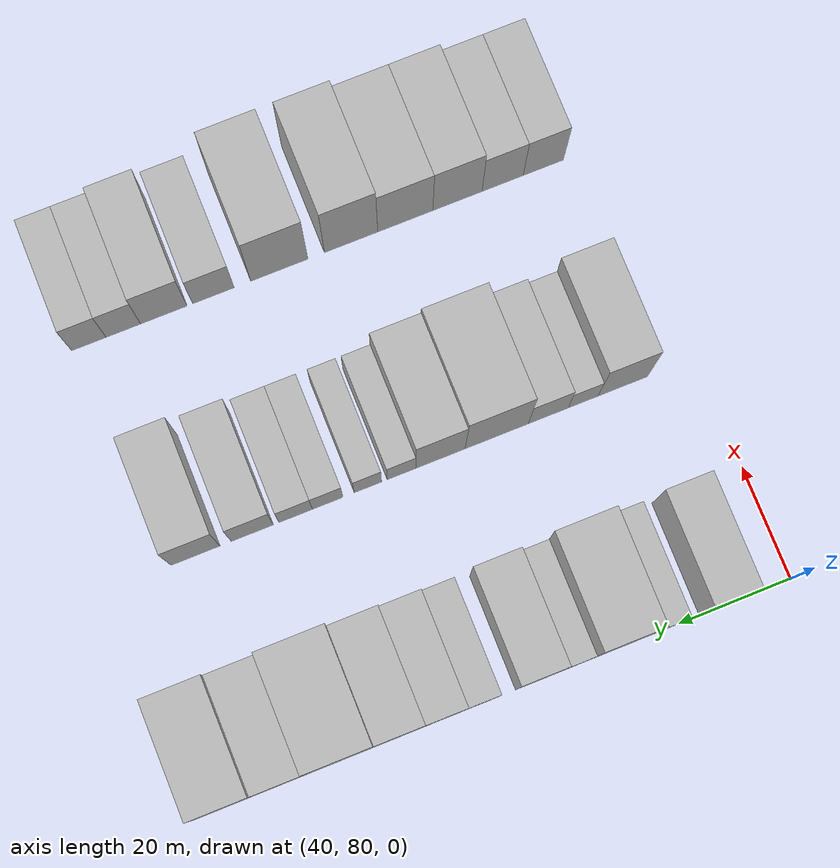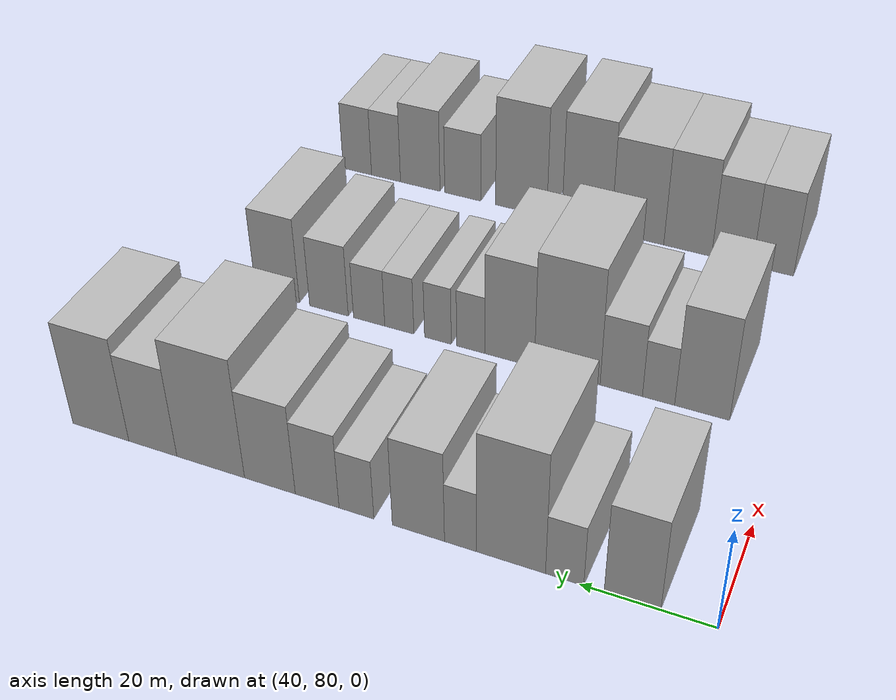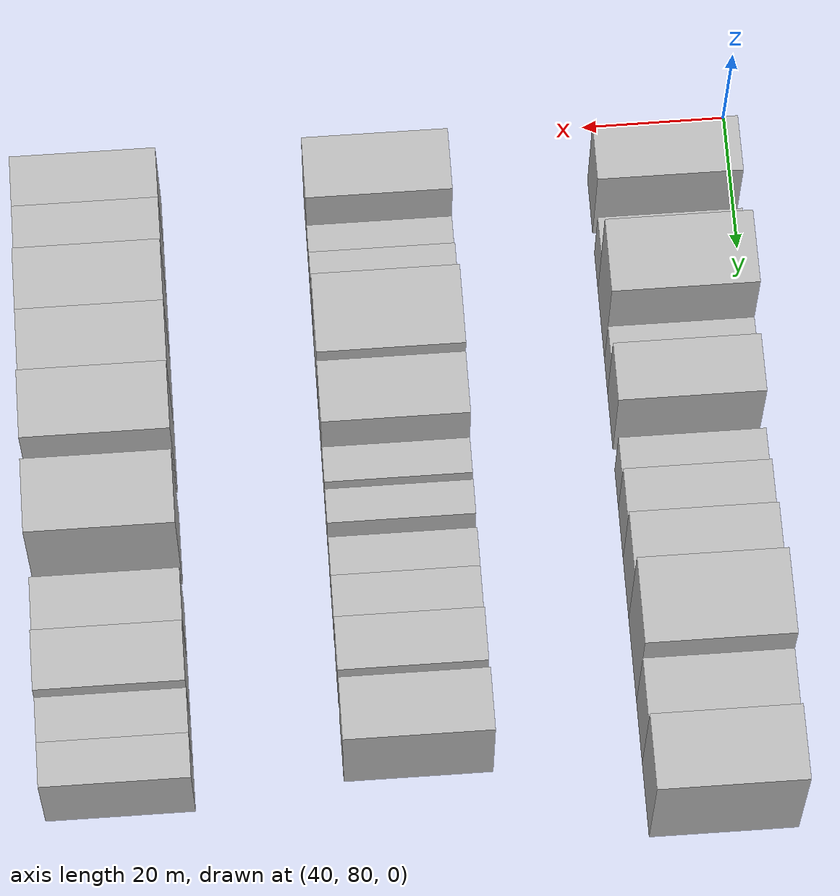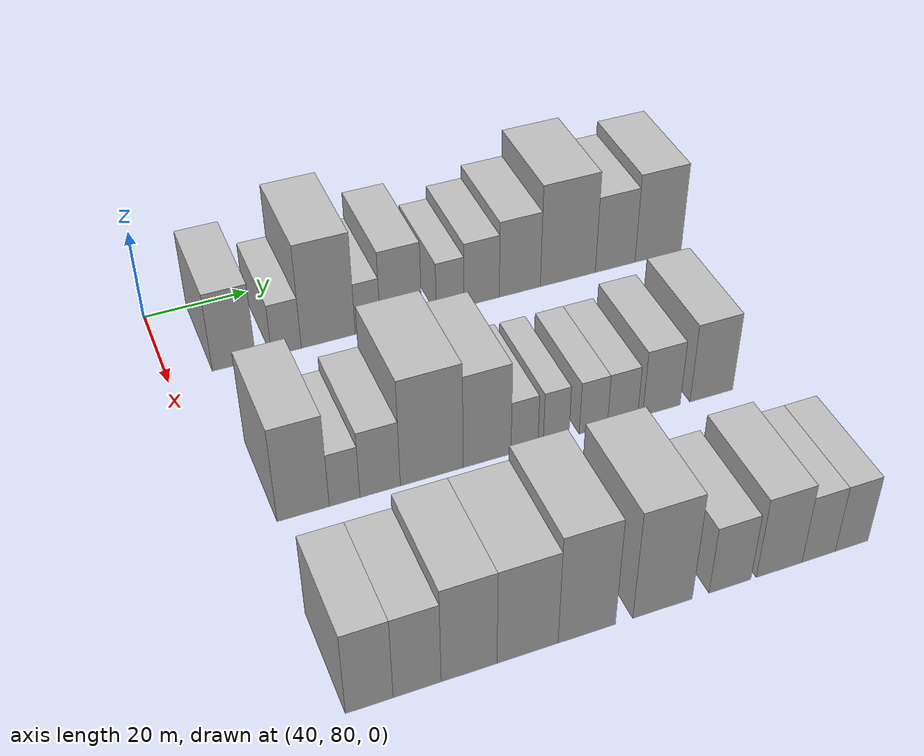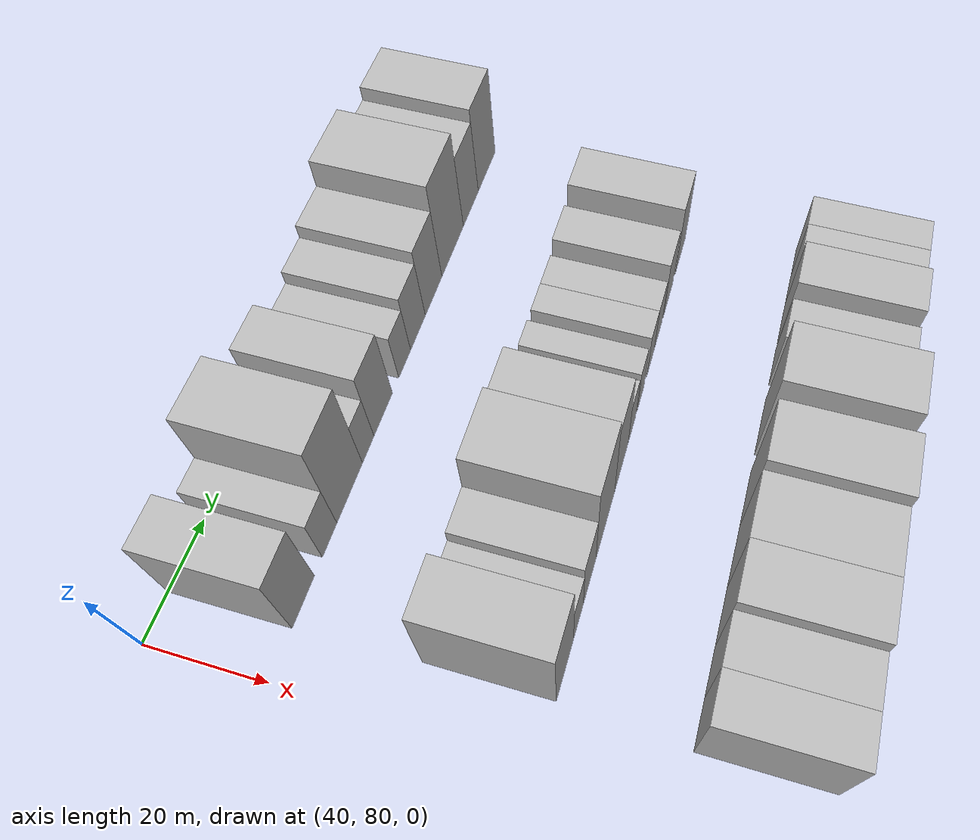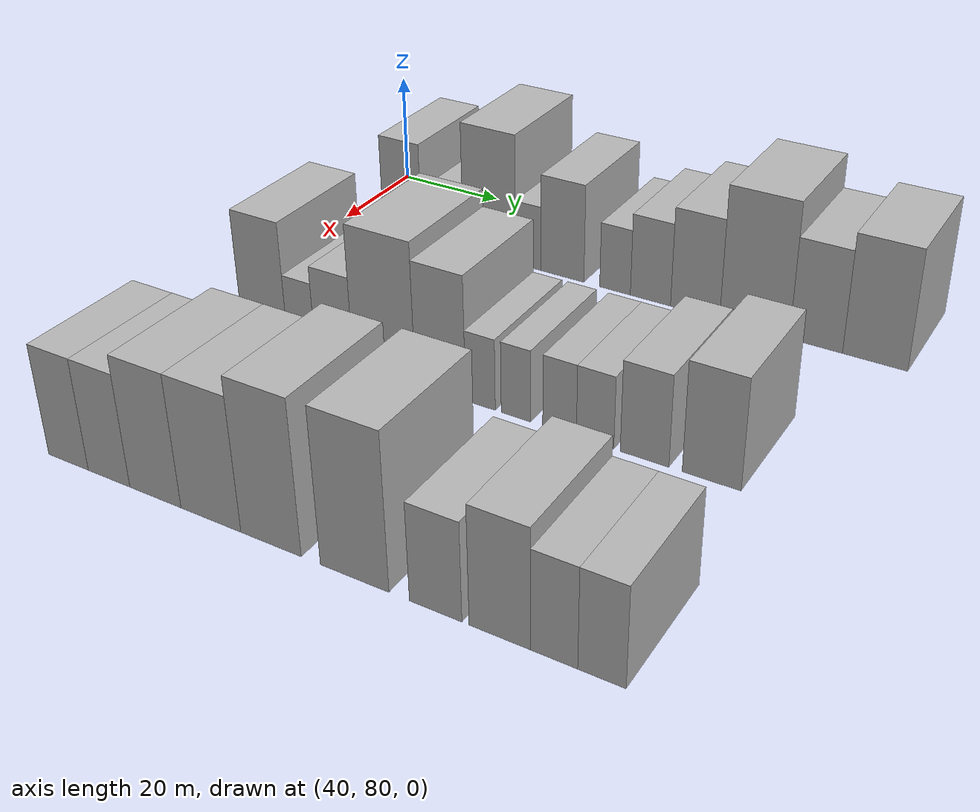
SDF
<sdf version="1.6">
 <world name="default">
  <model name="building_54">
   <static>1</static>
   <pose>50.0000 92.2535 0 0.000000 0.000000 0.000000</pose>
   <link name="link">
    <pose>0 0 9.00 0 0 0</pose>
    <collision name="collision"><geometry><box><size>20.0000 8.2513 18.0000</size></box></geometry></collision>
    <visual name="visual">
     <cast_shadows>0</cast_shadows>
     <geometry><box><size>20.0000 8.2513 18.0000</size></box></geometry>
     <material>
      <script>
       <uri>model://HANNAS_wall/materials/scripts</uri>
       <uri>model://HANNAS_wall/materials/textures</uri>
       <name>vrc/HANNAS_wall</name>
      </script>
     </material>
    </visual>
   </link>
  </model>
  <model name="building_55">
   <static>1</static>
   <pose>50.0000 102.2474 0 0.000000 0.000000 0.000000</pose>
   <link name="link">
    <pose>0 0 6.00 0 0 0</pose>
    <collision name="collision"><geometry><box><size>20.0000 5.7366 12.0000</size></box></geometry></collision>
    <visual name="visual">
     <cast_shadows>0</cast_shadows>
     <geometry><box><size>20.0000 5.7366 12.0000</size></box></geometry>
     <material>
      <script>
       <uri>model://HANNAS_wall/materials/scripts</uri>
       <uri>model://HANNAS_wall/materials/textures</uri>
       <name>vrc/HANNAS_wall</name>
      </script>
     </material>
    </visual>
   </link>
  </model>
  <model name="building_56">
   <static>1</static>
   <pose>50.0000 110.4101 0 0.000000 0.000000 0.000000</pose>
   <link name="link">
    <pose>0 0 12.00 0 0 0</pose>
    <collision name="collision"><geometry><box><size>20.0000 10.5888 24.0000</size></box></geometry></collision>
    <visual name="visual">
     <cast_shadows>0</cast_shadows>
     <geometry><box><size>20.0000 10.5888 24.0000</size></box></geometry>
     <material>
      <script>
       <uri>model://HANNAS_wall/materials/scripts</uri>
       <uri>model://HANNAS_wall/materials/textures</uri>
       <name>vrc/HANNAS_wall</name>
      </script>
     </material>
    </visual>
   </link>
  </model>
  <model name="building_57">
   <static>1</static>
   <pose>50.0000 118.2001 0 0.000000 0.000000 0.000000</pose>
   <link name="link">
    <pose>0 0 6.00 0 0 0</pose>
    <collision name="collision"><geometry><box><size>20.0000 4.9912 12.0000</size></box></geometry></collision>
    <visual name="visual">
     <cast_shadows>0</cast_shadows>
     <geometry><box><size>20.0000 4.9912 12.0000</size></box></geometry>
     <material>
      <script>
       <uri>model://HANNAS_wall/materials/scripts</uri>
       <uri>model://HANNAS_wall/materials/textures</uri>
       <name>vrc/HANNAS_wall</name>
      </script>
     </material>
    </visual>
   </link>
  </model>
  <model name="building_58">
   <static>1</static>
   <pose>50.0000 124.8624 0 0.000000 0.000000 0.000000</pose>
   <link name="link">
    <pose>0 0 9.00 0 0 0</pose>
    <collision name="collision"><geometry><box><size>20.0000 8.3333 18.0000</size></box></geometry></collision>
    <visual name="visual">
     <cast_shadows>0</cast_shadows>
     <geometry><box><size>20.0000 8.3333 18.0000</size></box></geometry>
     <material>
      <script>
       <uri>model://HANNAS_wall/materials/scripts</uri>
       <uri>model://HANNAS_wall/materials/textures</uri>
       <name>vrc/HANNAS_wall</name>
      </script>
     </material>
    </visual>
   </link>
  </model>
  <model name="building_59">
   <static>1</static>
   <pose>50.0000 134.8798 0 0.000000 0.000000 0.000000</pose>
   <link name="link">
    <pose>0 0 6.00 0 0 0</pose>
    <collision name="collision"><geometry><box><size>20.0000 5.7014 12.0000</size></box></geometry></collision>
    <visual name="visual">
     <cast_shadows>0</cast_shadows>
     <geometry><box><size>20.0000 5.7014 12.0000</size></box></geometry>
     <material>
      <script>
       <uri>model://HANNAS_wall/materials/scripts</uri>
       <uri>model://HANNAS_wall/materials/textures</uri>
       <name>vrc/HANNAS_wall</name>
      </script>
     </material>
    </visual>
   </link>
  </model>
  <model name="building_60">
   <static>1</static>
   <pose>50.0000 141.3897 0 0.000000 0.000000 0.000000</pose>
   <link name="link">
    <pose>0 0 7.50 0 0 0</pose>
    <collision name="collision"><geometry><box><size>20.0000 7.3184 15.0000</size></box></geometry></collision>
    <visual name="visual">
     <cast_shadows>0</cast_shadows>
     <geometry><box><size>20.0000 7.3184 15.0000</size></box></geometry>
     <material>
      <script>
       <uri>model://HANNAS_wall/materials/scripts</uri>
       <uri>model://HANNAS_wall/materials/textures</uri>
       <name>vrc/HANNAS_wall</name>
      </script>
     </material>
    </visual>
   </link>
  </model>
  <model name="building_61">
   <static>1</static>
   <pose>50.0000 149.3910 0 0.000000 0.000000 0.000000</pose>
   <link name="link">
    <pose>0 0 9.00 0 0 0</pose>
    <collision name="collision"><geometry><box><size>20.0000 8.6843 18.0000</size></box></geometry></collision>
    <visual name="visual">
     <cast_shadows>0</cast_shadows>
     <geometry><box><size>20.0000 8.6843 18.0000</size></box></geometry>
     <material>
      <script>
       <uri>model://HANNAS_wall/materials/scripts</uri>
       <uri>model://HANNAS_wall/materials/textures</uri>
       <name>vrc/HANNAS_wall</name>
      </script>
     </material>
    </visual>
   </link>
  </model>
  <model name="building_62">
   <static>1</static>
   <pose>50.0000 159.6789 0 0.000000 0.000000 0.000000</pose>
   <link name="link">
    <pose>0 0 12.00 0 0 0</pose>
    <collision name="collision"><geometry><box><size>20.0000 11.8914 24.0000</size></box></geometry></collision>
    <visual name="visual">
     <cast_shadows>0</cast_shadows>
     <geometry><box><size>20.0000 11.8914 24.0000</size></box></geometry>
     <material>
      <script>
       <uri>model://HANNAS_wall/materials/scripts</uri>
       <uri>model://HANNAS_wall/materials/textures</uri>
       <name>vrc/HANNAS_wall</name>
      </script>
     </material>
    </visual>
   </link>
  </model>
  <model name="building_63">
   <static>1</static>
   <pose>50.0000 169.9664 0 0.000000 0.000000 0.000000</pose>
   <link name="link">
    <pose>0 0 9.00 0 0 0</pose>
    <collision name="collision"><geometry><box><size>20.0000 8.6837 18.0000</size></box></geometry></collision>
    <visual name="visual">
     <cast_shadows>0</cast_shadows>
     <geometry><box><size>20.0000 8.6837 18.0000</size></box></geometry>
     <material>
      <script>
       <uri>model://HANNAS_wall/materials/scripts</uri>
       <uri>model://HANNAS_wall/materials/textures</uri>
       <name>vrc/HANNAS_wall</name>
      </script>
     </material>
    </visual>
   </link>
  </model>
  <model name="building_64">
   <static>1</static>
   <pose>50.0000 179.4710 0 0.000000 0.000000 0.000000</pose>
   <link name="link">
    <pose>0 0 10.50 0 0 0</pose>
    <collision name="collision"><geometry><box><size>20.0000 10.3254 21.0000</size></box></geometry></collision>
    <visual name="visual">
     <cast_shadows>0</cast_shadows>
     <geometry><box><size>20.0000 10.3254 21.0000</size></box></geometry>
     <material>
      <script>
       <uri>model://HANNAS_wall/materials/scripts</uri>
       <uri>model://HANNAS_wall/materials/textures</uri>
       <name>vrc/HANNAS_wall</name>
      </script>
     </material>
    </visual>
   </link>
  </model>
  <model name="building_142">
   <static>1</static>
   <pose>90.0000 93.2381 0 0.000000 0.000000 0.000000</pose>
   <link name="link">
    <pose>0 0 10.50 0 0 0</pose>
    <collision name="collision"><geometry><box><size>20.0000 9.0464 21.0000</size></box></geometry></collision>
    <visual name="visual">
     <cast_shadows>0</cast_shadows>
     <geometry><box><size>20.0000 9.0464 21.0000</size></box></geometry>
     <material>
      <script>
       <uri>model://HANNAS_wall/materials/scripts</uri>
       <uri>model://HANNAS_wall/materials/textures</uri>
       <name>vrc/HANNAS_wall</name>
      </script>
     </material>
    </visual>
   </link>
  </model>
  <model name="building_143">
   <static>1</static>
   <pose>90.0000 100.4512 0 0.000000 0.000000 0.000000</pose>
   <link name="link">
    <pose>0 0 6.00 0 0 0</pose>
    <collision name="collision"><geometry><box><size>20.0000 5.3796 12.0000</size></box></geometry></collision>
    <visual name="visual">
     <cast_shadows>0</cast_shadows>
     <geometry><box><size>20.0000 5.3796 12.0000</size></box></geometry>
     <material>
      <script>
       <uri>model://HANNAS_wall/materials/scripts</uri>
       <uri>model://HANNAS_wall/materials/textures</uri>
       <name>vrc/HANNAS_wall</name>
      </script>
     </material>
    </visual>
   </link>
  </model>
  <model name="building_144">
   <static>1</static>
   <pose>90.0000 106.7366 0 0.000000 0.000000 0.000000</pose>
   <link name="link">
    <pose>0 0 7.50 0 0 0</pose>
    <collision name="collision"><geometry><box><size>20.0000 7.1912 15.0000</size></box></geometry></collision>
    <visual name="visual">
     <cast_shadows>0</cast_shadows>
     <geometry><box><size>20.0000 7.1912 15.0000</size></box></geometry>
     <material>
      <script>
       <uri>model://HANNAS_wall/materials/scripts</uri>
       <uri>model://HANNAS_wall/materials/textures</uri>
       <name>vrc/HANNAS_wall</name>
      </script>
     </material>
    </visual>
   </link>
  </model>
  <model name="building_145">
   <static>1</static>
   <pose>90.0000 116.0403 0 0.000000 0.000000 0.000000</pose>
   <link name="link">
    <pose>0 0 12.00 0 0 0</pose>
    <collision name="collision"><geometry><box><size>20.0000 11.4162 24.0000</size></box></geometry></collision>
    <visual name="visual">
     <cast_shadows>0</cast_shadows>
     <geometry><box><size>20.0000 11.4162 24.0000</size></box></geometry>
     <material>
      <script>
       <uri>model://HANNAS_wall/materials/scripts</uri>
       <uri>model://HANNAS_wall/materials/textures</uri>
       <name>vrc/HANNAS_wall</name>
      </script>
     </material>
    </visual>
   </link>
  </model>
  <model name="building_146">
   <static>1</static>
   <pose>90.0000 126.1742 0 0.000000 0.000000 0.000000</pose>
   <link name="link">
    <pose>0 0 10.50 0 0 0</pose>
    <collision name="collision"><geometry><box><size>20.0000 8.8518 21.0000</size></box></geometry></collision>
    <visual name="visual">
     <cast_shadows>0</cast_shadows>
     <geometry><box><size>20.0000 8.8518 21.0000</size></box></geometry>
     <material>
      <script>
       <uri>model://HANNAS_wall/materials/scripts</uri>
       <uri>model://HANNAS_wall/materials/textures</uri>
       <name>vrc/HANNAS_wall</name>
      </script>
     </material>
    </visual>
   </link>
  </model>
  <model name="building_147">
   <static>1</static>
   <pose>90.0000 133.1425 0 0.000000 0.000000 0.000000</pose>
   <link name="link">
    <pose>0 0 6.00 0 0 0</pose>
    <collision name="collision"><geometry><box><size>20.0000 5.0846 12.0000</size></box></geometry></collision>
    <visual name="visual">
     <cast_shadows>0</cast_shadows>
     <geometry><box><size>20.0000 5.0846 12.0000</size></box></geometry>
     <material>
      <script>
       <uri>model://HANNAS_wall/materials/scripts</uri>
       <uri>model://HANNAS_wall/materials/textures</uri>
       <name>vrc/HANNAS_wall</name>
      </script>
     </material>
    </visual>
   </link>
  </model>
  <model name="building_148">
   <static>1</static>
   <pose>90.0000 139.1372 0 0.000000 0.000000 0.000000</pose>
   <link name="link">
    <pose>0 0 6.00 0 0 0</pose>
    <collision name="collision"><geometry><box><size>20.0000 4.9049 12.0000</size></box></geometry></collision>
    <visual name="visual">
     <cast_shadows>0</cast_shadows>
     <geometry><box><size>20.0000 4.9049 12.0000</size></box></geometry>
     <material>
      <script>
       <uri>model://HANNAS_wall/materials/scripts</uri>
       <uri>model://HANNAS_wall/materials/textures</uri>
       <name>vrc/HANNAS_wall</name>
      </script>
     </material>
    </visual>
   </link>
  </model>
  <model name="building_149">
   <static>1</static>
   <pose>90.0000 146.3164 0 0.000000 0.000000 0.000000</pose>
   <link name="link">
    <pose>0 0 6.00 0 0 0</pose>
    <collision name="collision"><geometry><box><size>20.0000 5.4536 12.0000</size></box></geometry></collision>
    <visual name="visual">
     <cast_shadows>0</cast_shadows>
     <geometry><box><size>20.0000 5.4536 12.0000</size></box></geometry>
     <material>
      <script>
       <uri>model://HANNAS_wall/materials/scripts</uri>
       <uri>model://HANNAS_wall/materials/textures</uri>
       <name>vrc/HANNAS_wall</name>
      </script>
     </material>
    </visual>
   </link>
  </model>
  <model name="building_150">
   <static>1</static>
   <pose>90.0000 152.0095 0 0.000000 0.000000 0.000000</pose>
   <link name="link">
    <pose>0 0 6.00 0 0 0</pose>
    <collision name="collision"><geometry><box><size>20.0000 5.9326 12.0000</size></box></geometry></collision>
    <visual name="visual">
     <cast_shadows>0</cast_shadows>
     <geometry><box><size>20.0000 5.9326 12.0000</size></box></geometry>
     <material>
      <script>
       <uri>model://HANNAS_wall/materials/scripts</uri>
       <uri>model://HANNAS_wall/materials/textures</uri>
       <name>vrc/HANNAS_wall</name>
      </script>
     </material>
    </visual>
   </link>
  </model>
  <model name="building_151">
   <static>1</static>
   <pose>90.0000 159.7069 0 0.000000 0.000000 0.000000</pose>
   <link name="link">
    <pose>0 0 7.50 0 0 0</pose>
    <collision name="collision"><geometry><box><size>20.0000 7.4622 15.0000</size></box></geometry></collision>
    <visual name="visual">
     <cast_shadows>0</cast_shadows>
     <geometry><box><size>20.0000 7.4622 15.0000</size></box></geometry>
     <material>
      <script>
       <uri>model://HANNAS_wall/materials/scripts</uri>
       <uri>model://HANNAS_wall/materials/textures</uri>
       <name>vrc/HANNAS_wall</name>
      </script>
     </material>
    </visual>
   </link>
  </model>
  <model name="building_152">
   <static>1</static>
   <pose>90.0000 169.7661 0 0.000000 0.000000 0.000000</pose>
   <link name="link">
    <pose>0 0 9.00 0 0 0</pose>
    <collision name="collision"><geometry><box><size>20.0000 8.6562 18.0000</size></box></geometry></collision>
    <visual name="visual">
     <cast_shadows>0</cast_shadows>
     <geometry><box><size>20.0000 8.6562 18.0000</size></box></geometry>
     <material>
      <script>
       <uri>model://HANNAS_wall/materials/scripts</uri>
       <uri>model://HANNAS_wall/materials/textures</uri>
       <name>vrc/HANNAS_wall</name>
      </script>
     </material>
    </visual>
   </link>
  </model>
  <model name="building_228">
   <static>1</static>
   <pose>130.0000 91.1052 0 0.000000 0.000000 0.000000</pose>
   <link name="link">
    <pose>0 0 9.00 0 0 0</pose>
    <collision name="collision"><geometry><box><size>20.0000 7.4293 18.0000</size></box></geometry></collision>
    <visual name="visual">
     <cast_shadows>0</cast_shadows>
     <geometry><box><size>20.0000 7.4293 18.0000</size></box></geometry>
     <material>
      <script>
       <uri>model://HANNAS_wall/materials/scripts</uri>
       <uri>model://HANNAS_wall/materials/textures</uri>
       <name>vrc/HANNAS_wall</name>
      </script>
     </material>
    </visual>
   </link>
  </model>
  <model name="building_229">
   <static>1</static>
   <pose>130.0000 98.6138 0 0.000000 0.000000 0.000000</pose>
   <link name="link">
    <pose>0 0 9.00 0 0 0</pose>
    <collision name="collision"><geometry><box><size>20.0000 7.5879 18.0000</size></box></geometry></collision>
    <visual name="visual">
     <cast_shadows>0</cast_shadows>
     <geometry><box><size>20.0000 7.5879 18.0000</size></box></geometry>
     <material>
      <script>
       <uri>model://HANNAS_wall/materials/scripts</uri>
       <uri>model://HANNAS_wall/materials/textures</uri>
       <name>vrc/HANNAS_wall</name>
      </script>
     </material>
    </visual>
   </link>
  </model>
  <model name="building_230">
   <static>1</static>
   <pose>130.0000 106.9142 0 0.000000 0.000000 0.000000</pose>
   <link name="link">
    <pose>0 0 10.50 0 0 0</pose>
    <collision name="collision"><geometry><box><size>20.0000 9.0129 21.0000</size></box></geometry></collision>
    <visual name="visual">
     <cast_shadows>0</cast_shadows>
     <geometry><box><size>20.0000 9.0129 21.0000</size></box></geometry>
     <material>
      <script>
       <uri>model://HANNAS_wall/materials/scripts</uri>
       <uri>model://HANNAS_wall/materials/textures</uri>
       <name>vrc/HANNAS_wall</name>
      </script>
     </material>
    </visual>
   </link>
  </model>
  <model name="building_231">
   <static>1</static>
   <pose>130.0000 116.4668 0 0.000000 0.000000 0.000000</pose>
   <link name="link">
    <pose>0 0 10.50 0 0 0</pose>
    <collision name="collision"><geometry><box><size>20.0000 10.0925 21.0000</size></box></geometry></collision>
    <visual name="visual">
     <cast_shadows>0</cast_shadows>
     <geometry><box><size>20.0000 10.0925 21.0000</size></box></geometry>
     <material>
      <script>
       <uri>model://HANNAS_wall/materials/scripts</uri>
       <uri>model://HANNAS_wall/materials/textures</uri>
       <name>vrc/HANNAS_wall</name>
      </script>
     </material>
    </visual>
   </link>
  </model>
  <model name="building_232">
   <static>1</static>
   <pose>130.0000 126.3704 0 0.000000 0.000000 0.000000</pose>
   <link name="link">
    <pose>0 0 12.00 0 0 0</pose>
    <collision name="collision"><geometry><box><size>20.0000 9.7147 24.0000</size></box></geometry></collision>
    <visual name="visual">
     <cast_shadows>0</cast_shadows>
     <geometry><box><size>20.0000 9.7147 24.0000</size></box></geometry>
     <material>
      <script>
       <uri>model://HANNAS_wall/materials/scripts</uri>
       <uri>model://HANNAS_wall/materials/textures</uri>
       <name>vrc/HANNAS_wall</name>
      </script>
     </material>
    </visual>
   </link>
  </model>
  <model name="building_233">
   <static>1</static>
   <pose>130.0000 139.4130 0 0.000000 0.000000 0.000000</pose>
   <link name="link">
    <pose>0 0 12.00 0 0 0</pose>
    <collision name="collision"><geometry><box><size>20.0000 10.3706 24.0000</size></box></geometry></collision>
    <visual name="visual">
     <cast_shadows>0</cast_shadows>
     <geometry><box><size>20.0000 10.3706 24.0000</size></box></geometry>
     <material>
      <script>
       <uri>model://HANNAS_wall/materials/scripts</uri>
       <uri>model://HANNAS_wall/materials/textures</uri>
       <name>vrc/HANNAS_wall</name>
      </script>
     </material>
    </visual>
   </link>
  </model>
  <model name="building_234">
   <static>1</static>
   <pose>130.0000 151.3448 0 0.000000 0.000000 0.000000</pose>
   <link name="link">
    <pose>0 0 7.50 0 0 0</pose>
    <collision name="collision"><geometry><box><size>20.0000 7.4929 15.0000</size></box></geometry></collision>
    <visual name="visual">
     <cast_shadows>0</cast_shadows>
     <geometry><box><size>20.0000 7.4929 15.0000</size></box></geometry>
     <material>
      <script>
       <uri>model://HANNAS_wall/materials/scripts</uri>
       <uri>model://HANNAS_wall/materials/textures</uri>
       <name>vrc/HANNAS_wall</name>
      </script>
     </material>
    </visual>
   </link>
  </model>
  <model name="building_235">
   <static>1</static>
   <pose>130.0000 160.2744 0 0.000000 0.000000 0.000000</pose>
   <link name="link">
    <pose>0 0 9.00 0 0 0</pose>
    <collision name="collision"><geometry><box><size>20.0000 8.3663 18.0000</size></box></geometry></collision>
    <visual name="visual">
     <cast_shadows>0</cast_shadows>
     <geometry><box><size>20.0000 8.3663 18.0000</size></box></geometry>
     <material>
      <script>
       <uri>model://HANNAS_wall/materials/scripts</uri>
       <uri>model://HANNAS_wall/materials/textures</uri>
       <name>vrc/HANNAS_wall</name>
      </script>
     </material>
    </visual>
   </link>
  </model>
  <model name="building_236">
   <static>1</static>
   <pose>130.0000 167.5632 0 0.000000 0.000000 0.000000</pose>
   <link name="link">
    <pose>0 0 7.50 0 0 0</pose>
    <collision name="collision"><geometry><box><size>20.0000 6.2113 15.0000</size></box></geometry></collision>
    <visual name="visual">
     <cast_shadows>0</cast_shadows>
     <geometry><box><size>20.0000 6.2113 15.0000</size></box></geometry>
     <material>
      <script>
       <uri>model://HANNAS_wall/materials/scripts</uri>
       <uri>model://HANNAS_wall/materials/textures</uri>
       <name>vrc/HANNAS_wall</name>
      </script>
     </material>
    </visual>
   </link>
  </model>
  <model name="building_237">
   <static>1</static>
   <pose>130.0000 173.7572 0 0.000000 0.000000 0.000000</pose>
   <link name="link">
    <pose>0 0 7.50 0 0 0</pose>
    <collision name="collision"><geometry><box><size>20.0000 6.1768 15.0000</size></box></geometry></collision>
    <visual name="visual">
     <cast_shadows>0</cast_shadows>
     <geometry><box><size>20.0000 6.1768 15.0000</size></box></geometry>
     <material>
      <script>
       <uri>model://HANNAS_wall/materials/scripts</uri>
       <uri>model://HANNAS_wall/materials/textures</uri>
       <name>vrc/HANNAS_wall</name>
      </script>
     </material>
    </visual>
   </link>
  </model>
 </world>
</sdf>
